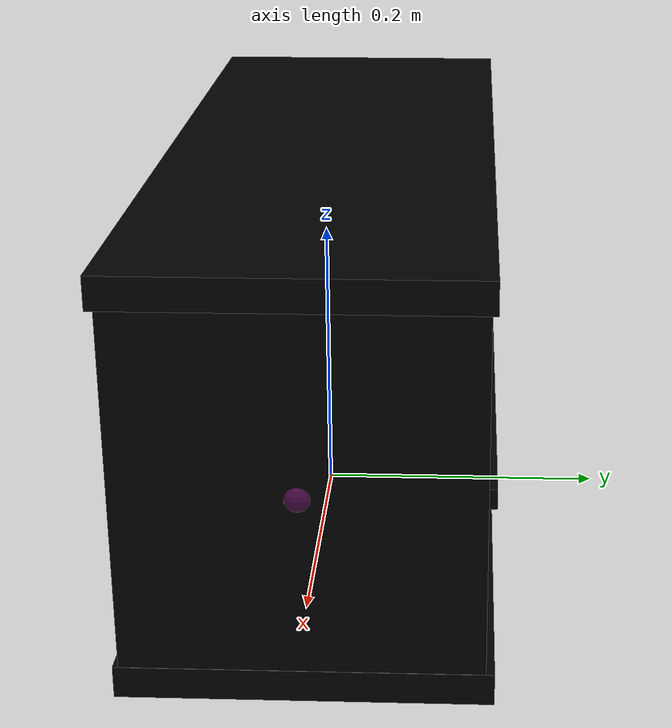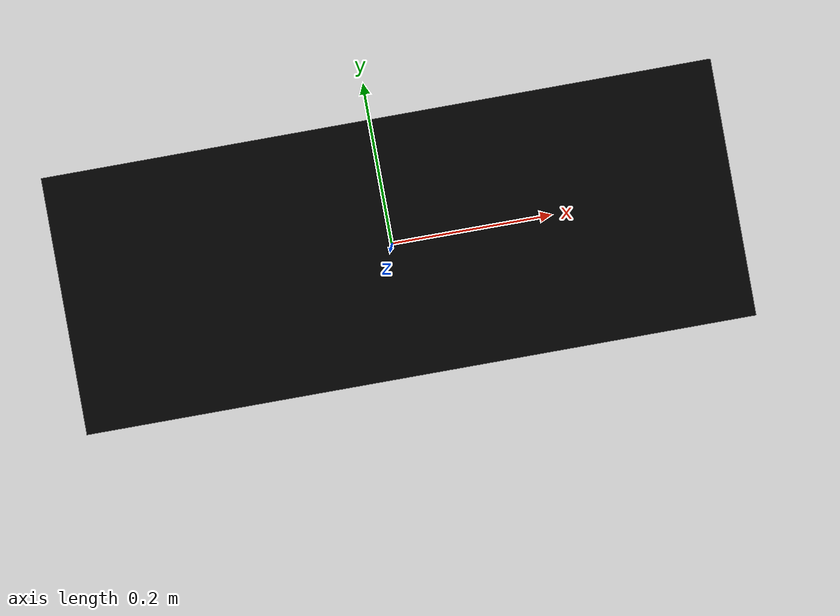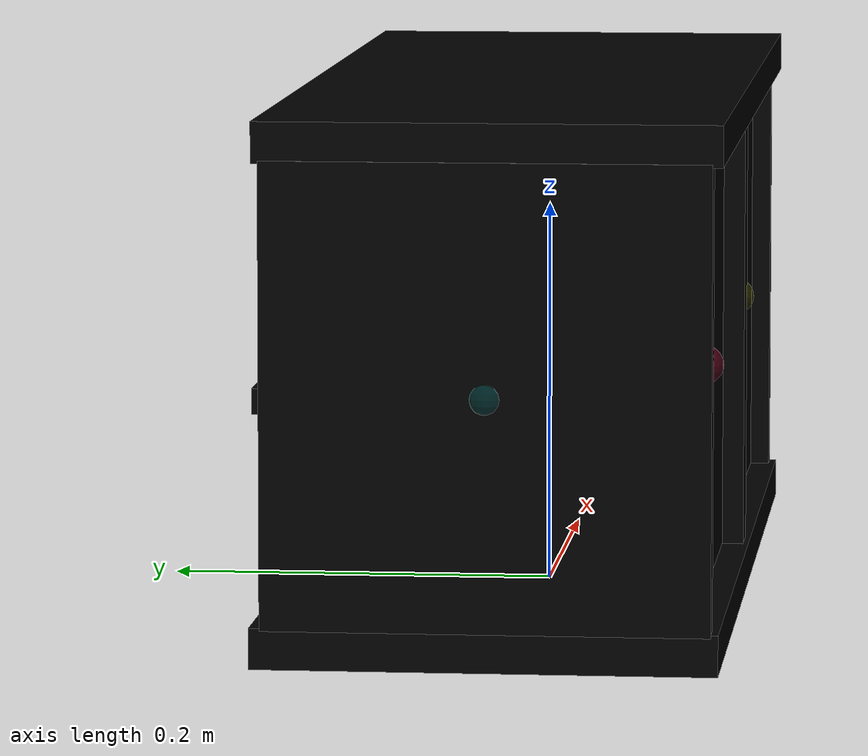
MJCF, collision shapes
<mujoco model="bookcase_besta_0170">
  <custom>
    <numeric data="-0.070591 0.012523 0.00199 0.706958 -0.706958 0.014498 -0.014498" name="0_part0_initpos" />
    <numeric data="-0.080256 -0.258595 0.00632 0.0 -0.999986 0.005202 0.0" name="8_part8_initpos" />
    <numeric data="0.274967 -0.272335 0.00632 0.0 -0.999928 -0.012017 0.0" name="7_part7_initpos" />
    <numeric data="0.259821 0.02173 0.00584 0.707029 -0.010492 0.707029 0.010492" name="6_part6_initpos" />
    <numeric data="-0.404145 0.315825 0.00632 0.706995 -0.012561 -0.706995 -0.012561" name="5_part5_initpos" />
    <numeric data="-0.40188 -0.275617 0.01267 0.5 -0.5 -0.5 -0.5" name="4_part4_initpos" />
    <numeric data="0.078748 0.33359 0.01024 0.999926 -0.0 -0.0 -0.012148" name="3_part3_initpos" />
    <numeric data="0.571399 0.008153 0.01025 -0.0 -0.696823 -0.717243 0.0" name="2_part2_initpos" />
    <numeric data="-0.424892 0.026808 0.00199 0.707105 -0.707105 0.001613 -0.001613" name="1_part1_initpos" />
  </custom>
  <asset>
    <mesh file="bookcase_besta_0170/0.stl" name="part0" scale="0.0005 0.0005 0.0005" />
    <mesh file="bookcase_besta_0170/8.stl" name="part8" scale="0.0005 0.0005 0.0005" />
    <mesh file="bookcase_besta_0170/7.stl" name="part7" scale="0.0005 0.0005 0.0005" />
    <mesh file="bookcase_besta_0170/6.stl" name="part6" scale="0.0005 0.0005 0.0005" />
    <mesh file="bookcase_besta_0170/5.stl" name="part5" scale="0.0005 0.0005 0.0005" />
    <mesh file="bookcase_besta_0170/4.stl" name="part4" scale="0.0005 0.0005 0.0005" />
    <mesh file="bookcase_besta_0170/3.stl" name="part3" scale="0.0005 0.0005 0.0005" />
    <mesh file="bookcase_besta_0170/2.stl" name="part2" scale="0.0005 0.0005 0.0005" />
    <mesh file="bookcase_besta_0170/1.stl" name="part1" scale="0.0005 0.0005 0.0005" />
  </asset>
  <worldbody><body name="combined_body" pos="-0.14 -0.09 0.1330499038696289" quat="1 0 0 0"><geom conaffinity="0" contype="0" density="0" mesh="part0" name="0_part0_mesh" pos="2e-10 5e-11 0.0" rgba="0.82 0.71 0.55 1" type="mesh" quat="1 0 0 0" />
      <geom density="50" name="noviz_collision_0_part0_0" pos="2e-10 5e-11 0.0" quat="1 0 0 0" rgba="0 0 0 0" size="0.13906 0.00202 0.11431" solref="0.001 1" type="box" />
    <site name="0_part0_horizontal_radius_site" pos="2e-10 5e-11 0.0" quat="1 0 0 0" rgba="0 0 0 0" size="0.01" />
      <site name="0_part0_top_site" pos="2e-10 5e-11 0.0" quat="1 0 0 0" rgba="0 0 0 0" size="0.01" />
      <site name="0_part0_bottom_site" pos="2e-10 5e-11 0.0" quat="1 0 0 0" rgba="0 0 0 0" size="0.01" />
      <site name="0_part0_corner_site8" pos="2e-10 5e-11 0.0" quat="1 0 0 0" rgba="0 0 0 0" size="0.01" />
      <site name="0_part0_corner_site7" pos="2e-10 5e-11 0.0" quat="1 0 0 0" rgba="0 0 0 0" size="0.01" />
      <site name="0_part0_corner_site6" pos="2e-10 5e-11 0.0" quat="1 0 0 0" rgba="0 0 0 0" size="0.01" />
      <site name="0_part0_corner_site5" pos="2e-10 5e-11 0.0" quat="1 0 0 0" rgba="0 0 0 0" size="0.01" />
      <site name="0_part0_corner_site4" pos="2e-10 5e-11 0.0" quat="1 0 0 0" rgba="0 0 0 0" size="0.01" />
      <site name="0_part0_corner_site3" pos="2e-10 5e-11 0.0" quat="1 0 0 0" rgba="0 0 0 0" size="0.01" />
      <site name="0_part0_corner_site2" pos="2e-10 5e-11 0.0" quat="1 0 0 0" rgba="0 0 0 0" size="0.01" />
      <site name="0_part0_corner_site1" pos="2e-10 5e-11 0.0" quat="1 0 0 0" rgba="0 0 0 0" size="0.01" />
      <site name="0_part0-2_part2,0,180,conn_site" pos="2e-10 5e-11 0.0" quat="1 0 0 0" rgba="0.9019 0.0980 0.2941 0.3" size="0.01" />
      <site name="back-shelf,0,180,conn_site1" pos="2e-10 5e-11 0.0" quat="1 0 0 0" rgba="0.2352 0.7058 0.2941 0.3" size="0.01" />
      <site name="back-floor,0,conn_site1" pos="2e-10 5e-11 0.0" quat="1 0 0 0" rgba="1.0 0.8823 0.0980 0.3" size="0.01" />
      <geom conaffinity="0" contype="0" density="0" mesh="part8" name="8_part8_mesh" pos="0.29879042535 0.1074300703 -0.0030907227000000004" rgba="0.82 0.71 0.55 1" type="mesh" quat="1 0 0 0" />
      <geom density="50" name="noviz_collision_8_part8_0" pos="0.29879042535 0.1074300703 -0.0030907227000000004" quat="1 0 0 0" rgba="0 0 0 0" size="0.13653 0.10541 0.00635" solref="0.001 1" type="box" />
    <site name="8_part8_horizontal_radius_site" pos="0.29879042535 0.1074300703 -0.0030907227000000004" quat="1 0 0 0" rgba="0 0 0 0" size="0.01" />
      <site name="8_part8_top_site" pos="0.29879042535 0.1074300703 -0.0030907227000000004" quat="1 0 0 0" rgba="0 0 0 0" size="0.01" />
      <site name="8_part8_bottom_site" pos="0.29879042535 0.1074300703 -0.0030907227000000004" quat="1 0 0 0" rgba="0 0 0 0" size="0.01" />
      <site name="8_part8_corner_site8" pos="0.29879042535 0.1074300703 -0.0030907227000000004" quat="1 0 0 0" rgba="0 0 0 0" size="0.01" />
      <site name="8_part8_corner_site7" pos="0.29879042535 0.1074300703 -0.0030907227000000004" quat="1 0 0 0" rgba="0 0 0 0" size="0.01" />
      <site name="8_part8_corner_site6" pos="0.29879042535 0.1074300703 -0.0030907227000000004" quat="1 0 0 0" rgba="0 0 0 0" size="0.01" />
      <site name="8_part8_corner_site5" pos="0.29879042535 0.1074300703 -0.0030907227000000004" quat="1 0 0 0" rgba="0 0 0 0" size="0.01" />
      <site name="8_part8_corner_site4" pos="0.29879042535 0.1074300703 -0.0030907227000000004" quat="1 0 0 0" rgba="0 0 0 0" size="0.01" />
      <site name="8_part8_corner_site3" pos="0.29879042535 0.1074300703 -0.0030907227000000004" quat="1 0 0 0" rgba="0 0 0 0" size="0.01" />
      <site name="8_part8_corner_site2" pos="0.29879042535 0.1074300703 -0.0030907227000000004" quat="1 0 0 0" rgba="0 0 0 0" size="0.01" />
      <site name="8_part8_corner_site1" pos="0.29879042535 0.1074300703 -0.0030907227000000004" quat="1 0 0 0" rgba="0 0 0 0" size="0.01" />
      <site name="8_part8-6_part6,0,180,conn_site" pos="0.29879042535 0.1074300703 -0.0030907227000000004" quat="1 0 0 0" rgba="0.2627 0.3882 0.8470 0.3" size="0.01" />
      <site name="8_part8-4_part4,0,180,conn_site" pos="0.29879042535 0.1074300703 -0.0030907227000000004" quat="1 0 0 0" rgba="0.9607 0.5098 0.1921 0.3" size="0.01" />
      <site name="shelf-back,0,180,conn_site2" pos="0.29879042535 0.1074300703 -0.0030907227000000004" quat="1 0 0 0" rgba="0.2352 0.7058 0.2941 0.3" size="0.01" />
      <geom conaffinity="0" contype="0" density="0" mesh="part7" name="7_part7_mesh" pos="0.00034042535 0.1074300703 -0.0030907227000000004" rgba="0.82 0.71 0.55 1" type="mesh" quat="1 0 0 0" />
      <geom density="50" name="noviz_collision_7_part7_0" pos="0.00034042535 0.1074300703 -0.0030907227000000004" quat="1 0 0 0" rgba="0 0 0 0" size="0.13653 0.10541 0.00635" solref="0.001 1" type="box" />
    <site name="7_part7_horizontal_radius_site" pos="0.00034042535 0.1074300703 -0.0030907227000000004" quat="1 0 0 0" rgba="0 0 0 0" size="0.01" />
      <site name="7_part7_top_site" pos="0.00034042535 0.1074300703 -0.0030907227000000004" quat="1 0 0 0" rgba="0 0 0 0" size="0.01" />
      <site name="7_part7_bottom_site" pos="0.00034042535 0.1074300703 -0.0030907227000000004" quat="1 0 0 0" rgba="0 0 0 0" size="0.01" />
      <site name="7_part7_corner_site8" pos="0.00034042535 0.1074300703 -0.0030907227000000004" quat="1 0 0 0" rgba="0 0 0 0" size="0.01" />
      <site name="7_part7_corner_site7" pos="0.00034042535 0.1074300703 -0.0030907227000000004" quat="1 0 0 0" rgba="0 0 0 0" size="0.01" />
      <site name="7_part7_corner_site6" pos="0.00034042535 0.1074300703 -0.0030907227000000004" quat="1 0 0 0" rgba="0 0 0 0" size="0.01" />
      <site name="7_part7_corner_site5" pos="0.00034042535 0.1074300703 -0.0030907227000000004" quat="1 0 0 0" rgba="0 0 0 0" size="0.01" />
      <site name="7_part7_corner_site4" pos="0.00034042535 0.1074300703 -0.0030907227000000004" quat="1 0 0 0" rgba="0 0 0 0" size="0.01" />
      <site name="7_part7_corner_site3" pos="0.00034042535 0.1074300703 -0.0030907227000000004" quat="1 0 0 0" rgba="0 0 0 0" size="0.01" />
      <site name="7_part7_corner_site2" pos="0.00034042535 0.1074300703 -0.0030907227000000004" quat="1 0 0 0" rgba="0 0 0 0" size="0.01" />
      <site name="7_part7_corner_site1" pos="0.00034042535 0.1074300703 -0.0030907227000000004" quat="1 0 0 0" rgba="0 0 0 0" size="0.01" />
      <site name="7_part7-4_part4,0,180,conn_site" pos="0.00034042535 0.1074300703 -0.0030907227000000004" quat="1 0 0 0" rgba="0.5686 0.1176 0.7058 0.3" size="0.01" />
      <site name="7_part7-5_part5,0,180,conn_site" pos="0.00034042535 0.1074300703 -0.0030907227000000004" quat="1 0 0 0" rgba="0.2745 0.9411 0.9411 0.3" size="0.01" />
      <site name="shelf-back,0,180,conn_site1" pos="0.00034042535 0.1074300703 -0.0030907227000000004" quat="1 0 0 0" rgba="0.2352 0.7058 0.2941 0.3" size="0.01" />
      <geom conaffinity="0" contype="0" density="0" mesh="part6" name="6_part6_mesh" pos="0.44166542535000003 0.09778788215 0.00064371055" rgba="0.82 0.71 0.55 1" type="mesh" quat="1 0 0 0" />
      <geom density="50" name="noviz_collision_6_part6_0" pos="0.44166542535000003 0.09778788215 0.00064371055" quat="1 0 0 0" rgba="0 0 0 0" size="0.00611 0.11014 0.11501" solref="0.001 1" type="box" />
    <site name="6_part6_horizontal_radius_site" pos="0.44166542535000003 0.09778788215 0.00064371055" quat="1 0 0 0" rgba="0 0 0 0" size="0.01" />
      <site name="6_part6_top_site" pos="0.44166542535000003 0.09778788215 0.00064371055" quat="1 0 0 0" rgba="0 0 0 0" size="0.01" />
      <site name="6_part6_bottom_site" pos="0.44166542535000003 0.09778788215 0.00064371055" quat="1 0 0 0" rgba="0 0 0 0" size="0.01" />
      <site name="6_part6_corner_site8" pos="0.44166542535000003 0.09778788215 0.00064371055" quat="1 0 0 0" rgba="0 0 0 0" size="0.01" />
      <site name="6_part6_corner_site7" pos="0.44166542535000003 0.09778788215 0.00064371055" quat="1 0 0 0" rgba="0 0 0 0" size="0.01" />
      <site name="6_part6_corner_site6" pos="0.44166542535000003 0.09778788215 0.00064371055" quat="1 0 0 0" rgba="0 0 0 0" size="0.01" />
      <site name="6_part6_corner_site5" pos="0.44166542535000003 0.09778788215 0.00064371055" quat="1 0 0 0" rgba="0 0 0 0" size="0.01" />
      <site name="6_part6_corner_site4" pos="0.44166542535000003 0.09778788215 0.00064371055" quat="1 0 0 0" rgba="0 0 0 0" size="0.01" />
      <site name="6_part6_corner_site3" pos="0.44166542535000003 0.09778788215 0.00064371055" quat="1 0 0 0" rgba="0 0 0 0" size="0.01" />
      <site name="6_part6_corner_site2" pos="0.44166542535000003 0.09778788215 0.00064371055" quat="1 0 0 0" rgba="0 0 0 0" size="0.01" />
      <site name="6_part6_corner_site1" pos="0.44166542535000003 0.09778788215 0.00064371055" quat="1 0 0 0" rgba="0 0 0 0" size="0.01" />
      <site name="6_part6-1_part1,0,180,conn_site" pos="0.44166542535000003 0.09778788215 0.00064371055" quat="1 0 0 0" rgba="0.9411 0.1960 0.9019 0.3" size="0.01" />
      <site name="6_part6-8_part8,0,180,conn_site" pos="0.44166542535000003 0.09778788215 0.00064371055" quat="1 0 0 0" rgba="0.2627 0.3882 0.8470 0.3" size="0.01" />
      <site name="6_part6-3_part3,0,180,conn_site" pos="0.44166542535000003 0.09778788215 0.00064371055" quat="1 0 0 0" rgba="0.7372 0.9647 0.0470 0.3" size="0.01" />
      <site name="wall-floor,0,180,conn_site2" pos="0.44166542535000003 0.09778788215 0.00064371055" quat="1 0 0 0" rgba="0.9803 0.7450 0.7450 0.3" size="0.01" />
      <geom conaffinity="0" contype="0" density="0" mesh="part5" name="5_part5_mesh" pos="-0.1425345768 0.09778788215 0.00064371055" rgba="0.82 0.71 0.55 1" type="mesh" quat="1 0 0 0" />
      <geom density="50" name="noviz_collision_5_part5_0" pos="-0.1425345768 0.09778788215 0.00064371055" quat="1 0 0 0" rgba="0 0 0 0" size="0.00659 0.11014 0.11501" solref="0.001 1" type="box" />
    <site name="5_part5_horizontal_radius_site" pos="-0.1425345768 0.09778788215 0.00064371055" quat="1 0 0 0" rgba="0 0 0 0" size="0.01" />
      <site name="5_part5_top_site" pos="-0.1425345768 0.09778788215 0.00064371055" quat="1 0 0 0" rgba="0 0 0 0" size="0.01" />
      <site name="5_part5_bottom_site" pos="-0.1425345768 0.09778788215 0.00064371055" quat="1 0 0 0" rgba="0 0 0 0" size="0.01" />
      <site name="5_part5_corner_site8" pos="-0.1425345768 0.09778788215 0.00064371055" quat="1 0 0 0" rgba="0 0 0 0" size="0.01" />
      <site name="5_part5_corner_site7" pos="-0.1425345768 0.09778788215 0.00064371055" quat="1 0 0 0" rgba="0 0 0 0" size="0.01" />
      <site name="5_part5_corner_site6" pos="-0.1425345768 0.09778788215 0.00064371055" quat="1 0 0 0" rgba="0 0 0 0" size="0.01" />
      <site name="5_part5_corner_site5" pos="-0.1425345768 0.09778788215 0.00064371055" quat="1 0 0 0" rgba="0 0 0 0" size="0.01" />
      <site name="5_part5_corner_site4" pos="-0.1425345768 0.09778788215 0.00064371055" quat="1 0 0 0" rgba="0 0 0 0" size="0.01" />
      <site name="5_part5_corner_site3" pos="-0.1425345768 0.09778788215 0.00064371055" quat="1 0 0 0" rgba="0 0 0 0" size="0.01" />
      <site name="5_part5_corner_site2" pos="-0.1425345768 0.09778788215 0.00064371055" quat="1 0 0 0" rgba="0 0 0 0" size="0.01" />
      <site name="5_part5_corner_site1" pos="-0.1425345768 0.09778788215 0.00064371055" quat="1 0 0 0" rgba="0 0 0 0" size="0.01" />
      <site name="5_part5-2_part2,0,180,conn_site" pos="-0.1425345768 0.09778788215 0.00064371055" quat="1 0 0 0" rgba="0.0 0.5019 0.5019 0.3" size="0.01" />
      <site name="5_part5-7_part7,0,180,conn_site" pos="-0.1425345768 0.09778788215 0.00064371055" quat="1 0 0 0" rgba="0.2745 0.9411 0.9411 0.3" size="0.01" />
      <site name="5_part5-3_part3,0,180,conn_site" pos="-0.1425345768 0.09778788215 0.00064371055" quat="1 0 0 0" rgba="0.9019 0.7450 1.0 0.3" size="0.01" />
      <site name="wall-floor,0,180,conn_site1" pos="-0.1425345768 0.09778788215 0.00064371055" quat="1 0 0 0" rgba="0.9803 0.7450 0.7450 0.3" size="0.01" />
      <geom conaffinity="0" contype="0" density="0" mesh="part4" name="4_part4_mesh" pos="0.1495654258 0.09778788215 0.00064371055" rgba="0.82 0.71 0.55 1" type="mesh" quat="1 0 0 0" />
      <geom density="50" name="noviz_collision_4_part4_0" pos="0.1495654258 0.09778788215 0.00064371055" quat="1 0 0 0" rgba="0 0 0 0" size="0.0127 0.11091 0.11501" solref="0.001 1" type="box" />
    <site name="4_part4_horizontal_radius_site" pos="0.1495654258 0.09778788215 0.00064371055" quat="1 0 0 0" rgba="0 0 0 0" size="0.01" />
      <site name="4_part4_top_site" pos="0.1495654258 0.09778788215 0.00064371055" quat="1 0 0 0" rgba="0 0 0 0" size="0.01" />
      <site name="4_part4_bottom_site" pos="0.1495654258 0.09778788215 0.00064371055" quat="1 0 0 0" rgba="0 0 0 0" size="0.01" />
      <site name="4_part4_corner_site8" pos="0.1495654258 0.09778788215 0.00064371055" quat="1 0 0 0" rgba="0 0 0 0" size="0.01" />
      <site name="4_part4_corner_site7" pos="0.1495654258 0.09778788215 0.00064371055" quat="1 0 0 0" rgba="0 0 0 0" size="0.01" />
      <site name="4_part4_corner_site6" pos="0.1495654258 0.09778788215 0.00064371055" quat="1 0 0 0" rgba="0 0 0 0" size="0.01" />
      <site name="4_part4_corner_site5" pos="0.1495654258 0.09778788215 0.00064371055" quat="1 0 0 0" rgba="0 0 0 0" size="0.01" />
      <site name="4_part4_corner_site4" pos="0.1495654258 0.09778788215 0.00064371055" quat="1 0 0 0" rgba="0 0 0 0" size="0.01" />
      <site name="4_part4_corner_site3" pos="0.1495654258 0.09778788215 0.00064371055" quat="1 0 0 0" rgba="0 0 0 0" size="0.01" />
      <site name="4_part4_corner_site2" pos="0.1495654258 0.09778788215 0.00064371055" quat="1 0 0 0" rgba="0 0 0 0" size="0.01" />
      <site name="4_part4_corner_site1" pos="0.1495654258 0.09778788215 0.00064371055" quat="1 0 0 0" rgba="0 0 0 0" size="0.01" />
      <site name="4_part4-2_part2,0,180,conn_site" pos="0.1495654258 0.09778788215 0.00064371055" quat="1 0 0 0" rgba="0.6039 0.3882 0.1411 0.3" size="0.01" />
      <site name="4_part4-8_part8,0,180,conn_site" pos="0.1495654258 0.09778788215 0.00064371055" quat="1 0 0 0" rgba="0.9607 0.5098 0.1921 0.3" size="0.01" />
      <site name="4_part4-3_part3,0,180,conn_site" pos="0.1495654258 0.09778788215 0.00064371055" quat="1 0 0 0" rgba="1.0 0.9803 0.7843 0.3" size="0.01" />
      <site name="4_part4-7_part7,0,180,conn_site" pos="0.1495654258 0.09778788215 0.00064371055" quat="1 0 0 0" rgba="0.5686 0.1176 0.7058 0.3" size="0.01" />
      <site name="middle-top,0,180,conn_site1" pos="0.1495654258 0.09778788215 0.00064371055" quat="1 0 0 0" rgba="0.5019 0.0 0.0 0.3" size="0.01" />
      <site name="middle-bottom,0,180,conn_site1" pos="0.1495654258 0.09778788215 0.00064371055" quat="1 0 0 0" rgba="0.6666 1.0 0.7647 0.3" size="0.01" />
      <geom conaffinity="0" contype="0" density="0" mesh="part3" name="3_part3_mesh" pos="0.14956540955 0.09860296060000001 -0.12317861005000001" rgba="0.82 0.71 0.55 1" type="mesh" quat="1 0 0 0" />
      <geom density="50" name="noviz_collision_3_part3_0" pos="0.14956540955 0.09860296060000001 -0.12317861005000001" quat="1 0 0 0" rgba="0 0 0 0" size="0.29845 0.11448 0.01022" solref="0.001 1" type="box" />
    <site name="3_part3_horizontal_radius_site" pos="0.14956540955 0.09860296060000001 -0.12317861005000001" quat="1 0 0 0" rgba="0 0 0 0" size="0.01" />
      <site name="3_part3_top_site" pos="0.14956540955 0.09860296060000001 -0.12317861005000001" quat="1 0 0 0" rgba="0 0 0 0" size="0.01" />
      <site name="3_part3_bottom_site" pos="0.14956540955 0.09860296060000001 -0.12317861005000001" quat="1 0 0 0" rgba="0 0 0 0" size="0.01" />
      <site name="3_part3_corner_site8" pos="0.14956540955 0.09860296060000001 -0.12317861005000001" quat="1 0 0 0" rgba="0 0 0 0" size="0.01" />
      <site name="3_part3_corner_site7" pos="0.14956540955 0.09860296060000001 -0.12317861005000001" quat="1 0 0 0" rgba="0 0 0 0" size="0.01" />
      <site name="3_part3_corner_site6" pos="0.14956540955 0.09860296060000001 -0.12317861005000001" quat="1 0 0 0" rgba="0 0 0 0" size="0.01" />
      <site name="3_part3_corner_site5" pos="0.14956540955 0.09860296060000001 -0.12317861005000001" quat="1 0 0 0" rgba="0 0 0 0" size="0.01" />
      <site name="3_part3_corner_site4" pos="0.14956540955 0.09860296060000001 -0.12317861005000001" quat="1 0 0 0" rgba="0 0 0 0" size="0.01" />
      <site name="3_part3_corner_site3" pos="0.14956540955 0.09860296060000001 -0.12317861005000001" quat="1 0 0 0" rgba="0 0 0 0" size="0.01" />
      <site name="3_part3_corner_site2" pos="0.14956540955 0.09860296060000001 -0.12317861005000001" quat="1 0 0 0" rgba="0 0 0 0" size="0.01" />
      <site name="3_part3_corner_site1" pos="0.14956540955 0.09860296060000001 -0.12317861005000001" quat="1 0 0 0" rgba="0 0 0 0" size="0.01" />
      <site name="3_part3-6_part6,0,180,conn_site" pos="0.14956540955 0.09860296060000001 -0.12317861005000001" quat="1 0 0 0" rgba="0.7372 0.9647 0.0470 0.3" size="0.01" />
      <site name="3_part3-4_part4,0,180,conn_site" pos="0.14956540955 0.09860296060000001 -0.12317861005000001" quat="1 0 0 0" rgba="1.0 0.9803 0.7843 0.3" size="0.01" />
      <site name="3_part3-5_part5,0,180,conn_site" pos="0.14956540955 0.09860296060000001 -0.12317861005000001" quat="1 0 0 0" rgba="0.9019 0.7450 1.0 0.3" size="0.01" />
      <site name="bottom-middle,0,180,conn_site1" pos="0.14956540955 0.09860296060000001 -0.12317861005000001" quat="1 0 0 0" rgba="0.6666 1.0 0.7647 0.3" size="0.01" />
      <site name="floor-wall,0,180,conn_site2" pos="0.14956540955 0.09860296060000001 -0.12317861005000001" quat="1 0 0 0" rgba="0.9803 0.7450 0.7450 0.3" size="0.01" />
      <site name="floor-wall,0,180,conn_site1" pos="0.14956540955 0.09860296060000001 -0.12317861005000001" quat="1 0 0 0" rgba="0.9803 0.7450 0.7450 0.3" size="0.01" />
      <site name="floor-back,0,conn_site2" pos="0.14956540955 0.09860296060000001 -0.12317861005000001" quat="1 0 0 0" rgba="1.0 0.8823 0.0980 0.3" size="0.01" />
      <site name="floor-back,0,conn_site1" pos="0.14956540955 0.09860296060000001 -0.12317861005000001" quat="1 0 0 0" rgba="1.0 0.8823 0.0980 0.3" size="0.01" />
      <geom conaffinity="0" contype="0" density="0" mesh="part2" name="2_part2_mesh" pos="0.14956542535 0.09697281355 0.12446602470000001" rgba="0.82 0.71 0.55 1" type="mesh" quat="1 0 0 0" />
      <geom density="50" name="noviz_collision_2_part2_0" pos="0.14956542535 0.09697281355 0.12446602470000001" quat="1 0 0 0" rgba="0 0 0 0" size="0.29845 0.11436 0.01028" solref="0.001 1" type="box" />
    <site name="2_part2_horizontal_radius_site" pos="0.14956542535 0.09697281355 0.12446602470000001" quat="1 0 0 0" rgba="0 0 0 0" size="0.01" />
      <site name="2_part2_top_site" pos="0.14956542535 0.09697281355 0.12446602470000001" quat="1 0 0 0" rgba="0 0 0 0" size="0.01" />
      <site name="2_part2_bottom_site" pos="0.14956542535 0.09697281355 0.12446602470000001" quat="1 0 0 0" rgba="0 0 0 0" size="0.01" />
      <site name="2_part2_corner_site8" pos="0.14956542535 0.09697281355 0.12446602470000001" quat="1 0 0 0" rgba="0 0 0 0" size="0.01" />
      <site name="2_part2_corner_site7" pos="0.14956542535 0.09697281355 0.12446602470000001" quat="1 0 0 0" rgba="0 0 0 0" size="0.01" />
      <site name="2_part2_corner_site6" pos="0.14956542535 0.09697281355 0.12446602470000001" quat="1 0 0 0" rgba="0 0 0 0" size="0.01" />
      <site name="2_part2_corner_site5" pos="0.14956542535 0.09697281355 0.12446602470000001" quat="1 0 0 0" rgba="0 0 0 0" size="0.01" />
      <site name="2_part2_corner_site4" pos="0.14956542535 0.09697281355 0.12446602470000001" quat="1 0 0 0" rgba="0 0 0 0" size="0.01" />
      <site name="2_part2_corner_site3" pos="0.14956542535 0.09697281355 0.12446602470000001" quat="1 0 0 0" rgba="0 0 0 0" size="0.01" />
      <site name="2_part2_corner_site2" pos="0.14956542535 0.09697281355 0.12446602470000001" quat="1 0 0 0" rgba="0 0 0 0" size="0.01" />
      <site name="2_part2_corner_site1" pos="0.14956542535 0.09697281355 0.12446602470000001" quat="1 0 0 0" rgba="0 0 0 0" size="0.01" />
      <site name="2_part2-1_part1,0,180,conn_site" pos="0.14956542535 0.09697281355 0.12446602470000001" quat="1 0 0 0" rgba="0.5019 0.5019 0.0 0.3" size="0.01" />
      <site name="2_part2-0_part0,0,180,conn_site" pos="0.14956542535 0.09697281355 0.12446602470000001" quat="1 0 0 0" rgba="0.9019 0.0980 0.2941 0.3" size="0.01" />
      <site name="2_part2-4_part4,0,180,conn_site" pos="0.14956542535 0.09697281355 0.12446602470000001" quat="1 0 0 0" rgba="0.6039 0.3882 0.1411 0.3" size="0.01" />
      <site name="2_part2-5_part5,0,180,conn_site" pos="0.14956542535 0.09697281355 0.12446602470000001" quat="1 0 0 0" rgba="0.0 0.5019 0.5019 0.3" size="0.01" />
      <site name="top-middle,0,180,conn_site1" pos="0.14956542535 0.09697281355 0.12446602470000001" quat="1 0 0 0" rgba="0.5019 0.0 0.0 0.3" size="0.01" />
      <geom conaffinity="0" contype="0" density="0" mesh="part1" name="1_part1_mesh" pos="0.29947947655 5e-11 0.0" rgba="0.82 0.71 0.55 1" type="mesh" quat="1 0 0 0" />
      <geom density="50" name="noviz_collision_1_part1_0" pos="0.29947947655 5e-11 0.0" quat="1 0 0 0" rgba="0 0 0 0" size="0.13907 0.00202 0.11431" solref="0.001 1" type="box" />
    <site name="1_part1_horizontal_radius_site" pos="0.29947947655 5e-11 0.0" quat="1 0 0 0" rgba="0 0 0 0" size="0.01" />
      <site name="1_part1_top_site" pos="0.29947947655 5e-11 0.0" quat="1 0 0 0" rgba="0 0 0 0" size="0.01" />
      <site name="1_part1_bottom_site" pos="0.29947947655 5e-11 0.0" quat="1 0 0 0" rgba="0 0 0 0" size="0.01" />
      <site name="1_part1_corner_site8" pos="0.29947947655 5e-11 0.0" quat="1 0 0 0" rgba="0 0 0 0" size="0.01" />
      <site name="1_part1_corner_site7" pos="0.29947947655 5e-11 0.0" quat="1 0 0 0" rgba="0 0 0 0" size="0.01" />
      <site name="1_part1_corner_site6" pos="0.29947947655 5e-11 0.0" quat="1 0 0 0" rgba="0 0 0 0" size="0.01" />
      <site name="1_part1_corner_site5" pos="0.29947947655 5e-11 0.0" quat="1 0 0 0" rgba="0 0 0 0" size="0.01" />
      <site name="1_part1_corner_site4" pos="0.29947947655 5e-11 0.0" quat="1 0 0 0" rgba="0 0 0 0" size="0.01" />
      <site name="1_part1_corner_site3" pos="0.29947947655 5e-11 0.0" quat="1 0 0 0" rgba="0 0 0 0" size="0.01" />
      <site name="1_part1_corner_site2" pos="0.29947947655 5e-11 0.0" quat="1 0 0 0" rgba="0 0 0 0" size="0.01" />
      <site name="1_part1_corner_site1" pos="0.29947947655 5e-11 0.0" quat="1 0 0 0" rgba="0 0 0 0" size="0.01" />
      <site name="1_part1-2_part2,0,180,conn_site" pos="0.29947947655 5e-11 0.0" quat="1 0 0 0" rgba="0.5019 0.5019 0.0 0.3" size="0.01" />
      <site name="1_part1-6_part6,0,180,conn_site" pos="0.29947947655 5e-11 0.0" quat="1 0 0 0" rgba="0.9411 0.1960 0.9019 0.3" size="0.01" />
      <site name="back-shelf,0,180,conn_site2" pos="0.29947947655 5e-11 0.0" quat="1 0 0 0" rgba="0.2352 0.7058 0.2941 0.3" size="0.01" />
      <site name="back-floor,0,conn_site2" pos="0.29947947655 5e-11 0.0" quat="1 0 0 0" rgba="1.0 0.8823 0.0980 0.3" size="0.01" />
      </body></worldbody><actuator /><sensor /><contact /><default /></mujoco>
